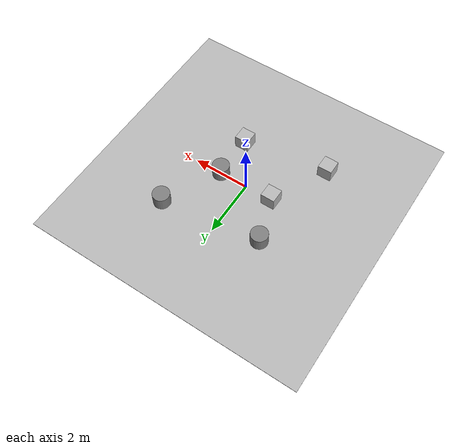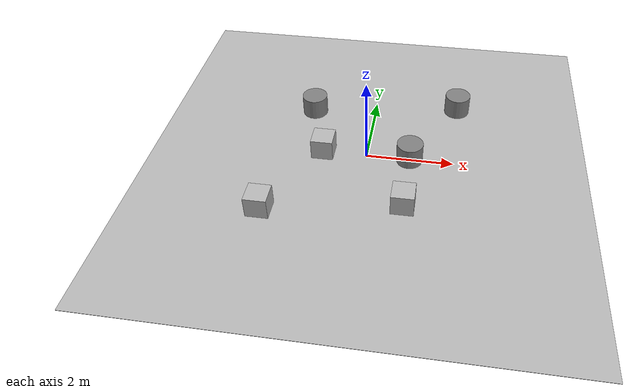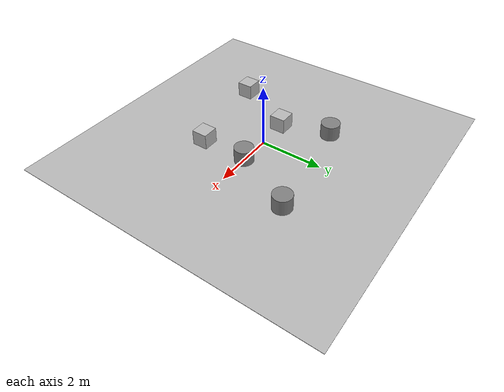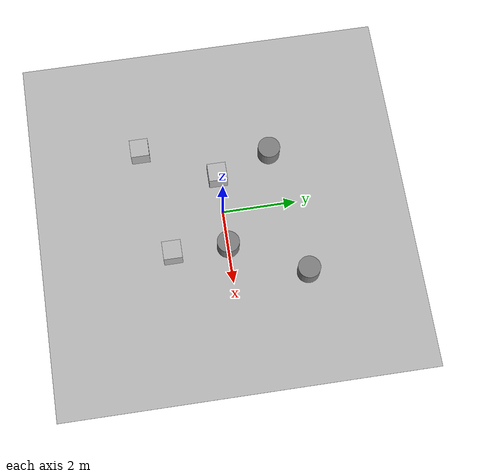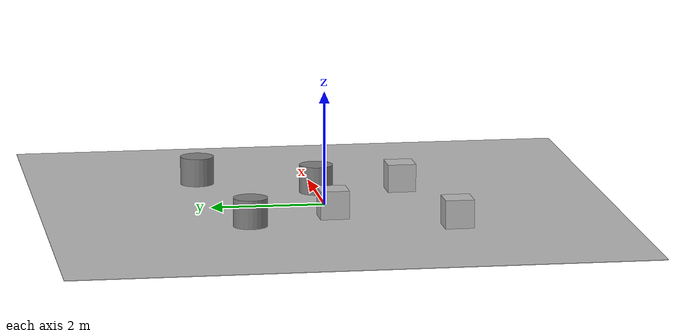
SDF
<?xml version="1.0" ?>
<sdf version="1.6">
  <world name="lawn">

    <!-- Lighting -->
    <include>
      <uri>model://sun</uri>
    </include>

    <!-- Ground -->
    <model name="lawn">
      <static>true</static>
      <link name="lawn_link">
        <visual name="lawn_visual">
          <geometry>
            <box>
              <size>10 10 0.01</size>
            </box>
          </geometry>
        </visual>
        <collision name="lawn_collision">
          <geometry>
            <box>
              <size>10 10 0.01</size>
            </box>
          </geometry>
        </collision>
      </link>
    </model>

    <!-- Bush -->
    <model name="bush">
      <static>true</static>
      <pose>2 2 0.25 0 0 0</pose>
      <link name="bush_link">
        <visual name="bush_visual">
          <geometry>
            <cylinder>
              <radius>0.3</radius>
              <length>0.5</length>
            </cylinder>
          </geometry>
          <material>
            <ambient>0.5 0.5 0.5 1</ambient>
            <diffuse>0.5 0.5 0.5 1</diffuse>
          </material>
        </visual>
        <collision name="bush_collision">
          <geometry>
            <cylinder>
              <radius>0.3</radius>
              <length>0.5</length>
            </cylinder>
          </geometry>
        </collision>
      </link>
    </model>

    <!--2nd Bush -->
    <model name="bush2">
      <static>true</static>
      <pose>1 0 0.25 0 0 0</pose>
      <link name="bush2_link">
        <visual name="bush2_visual">
          <geometry>
            <cylinder>
              <radius>0.3</radius>
              <length>0.5</length>
            </cylinder>
          </geometry>
          <material>
            <ambient>0.5 0.5 0.5 1</ambient>
            <diffuse>0.5 0.5 0.5 1</diffuse>
          </material>
        </visual>
        <collision name="bush2_collision">
          <geometry>
            <cylinder>
              <radius>0.3</radius>
              <length>0.5</length>
            </cylinder>
          </geometry>
        </collision>
      </link>
    </model>

    <!--3rd Bush -->
    <model name="bush3">
      <static>true</static>
      <pose>-1.5 1.5 0.25 0 0 0</pose>
      <link name="bush3_link">
        <visual name="bush3_visual">
          <geometry>
            <cylinder>
              <radius>0.3</radius>
              <length>0.5</length>
            </cylinder>
          </geometry>
          <material>
            <ambient>0.5 0.5 0.5 1</ambient>
            <diffuse>0.5 0.5 0.5 1</diffuse>
          </material>
        </visual>
        <collision name="bush3_collision">
          <geometry>
            <cylinder>
              <radius>0.3</radius>
              <length>0.5</length>
            </cylinder>
          </geometry>
        </collision>
      </link>
    </model>

    <!--Random Cube-->
    <model name="cube">
      <static>true</static>
        <pose>-2 -2 0.25 0 0 0</pose>
        <link name="cube_link">
          <visual name="cube_visual">
            <geometry>
              <box>
                <size>0.5 0.5 0.5</size>
              </box>
            </geometry>
          </visual>
          <collision name="cube_collision">
            <geometry>
              <box>
                <size>0.5 0.5 0.5</size>
              </box>
            </geometry>
          </collision>
        </link>
      </model>

    <!--Random Cube-->
    <model name="cube2">
      <static>true</static>
        <pose>-1 0 0.25 0 0 0</pose>
        <link name="cube2_link">
          <visual name="cube2_visual">
            <geometry>
              <box>
                <size>0.5 0.5 0.5</size>
              </box>
            </geometry>
          </visual>
          <collision name="cube2_collision">
            <geometry>
              <box>
                <size>0.5 0.5 0.5</size>
              </box>
            </geometry>
          </collision>
        </link>
      </model>

    <!--Random Cube-->
    <model name="cube3">
      <static>true</static>
        <pose>1 -1.5 0.25 0 0 0</pose>
        <link name="cube3_link">
          <visual name="cube3_visual">
            <geometry>
              <box>
                <size>0.5 0.5 0.5</size>
              </box>
            </geometry>
          </visual>
          <collision name="cube3_collision">
            <geometry>
              <box>
                <size>0.5 0.5 0.5</size>
              </box>
            </geometry>
          </collision>
        </link>
      </model>

  </world>
</sdf>
